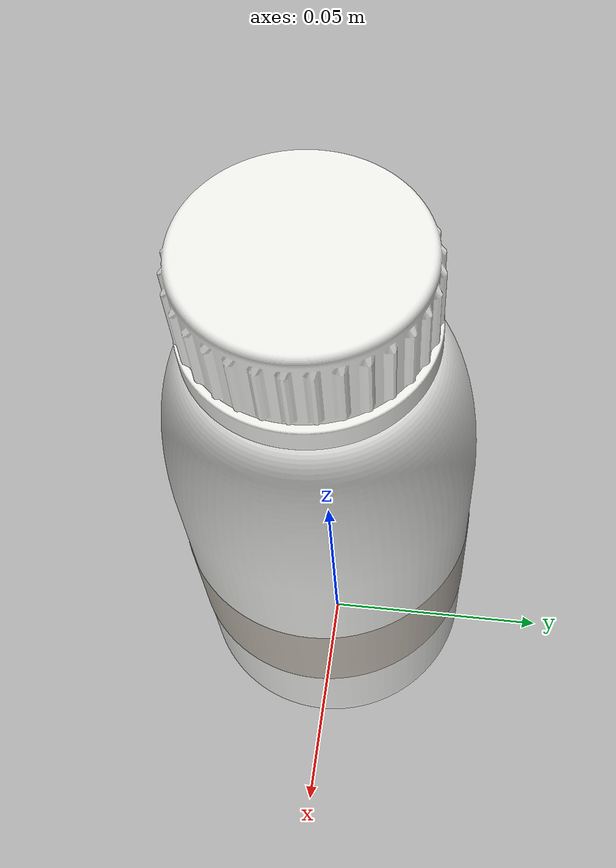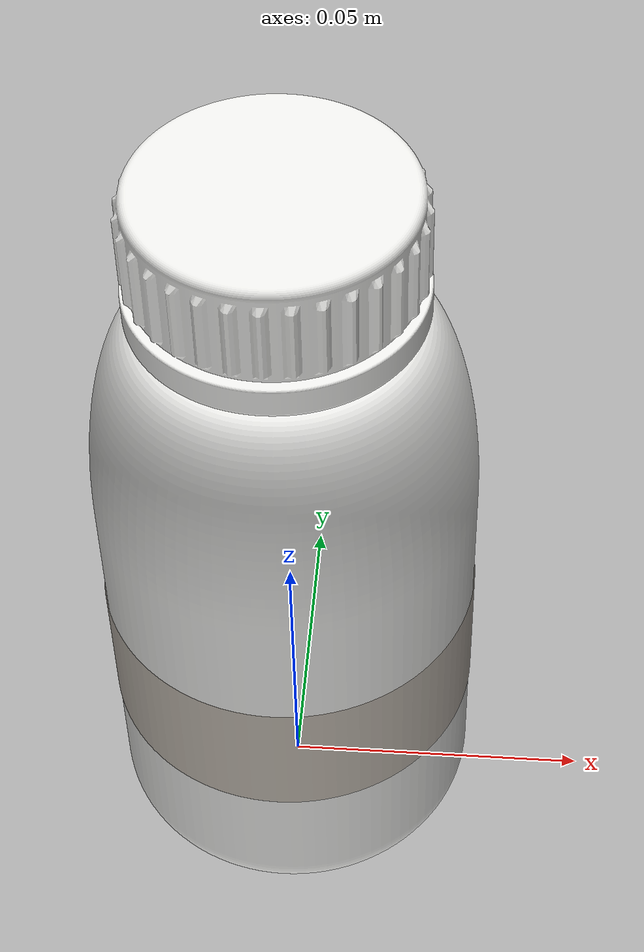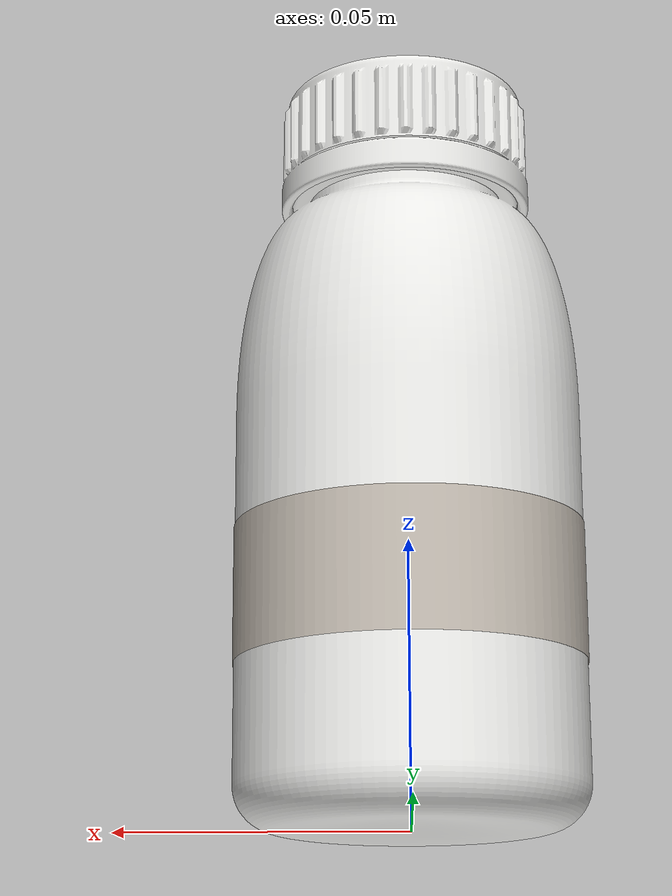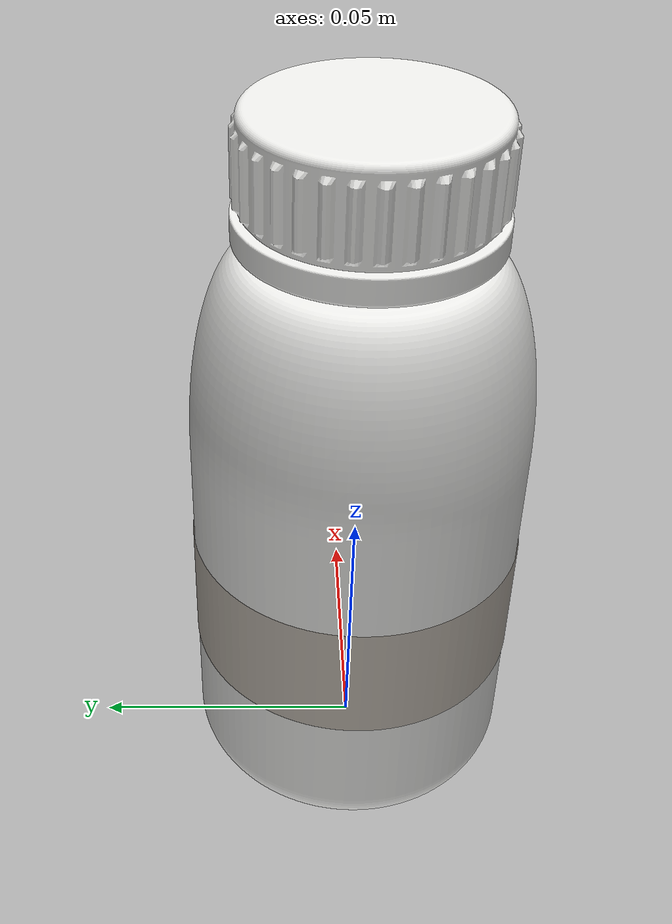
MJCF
<!-- Generated by tools/build_labelled_bottles.py. Phenylacetic acid (powder),
     250 ml, marker 196, barcode 2003873393826.
     Origin bottom-centre, +Z up, the label's front facing -Y. -->
<mujoco model="PWD-0097">
  <asset>
    <mesh name="bottle_250ml_body" file="meshes/bottle_250ml_body.obj" inertia="exact"/>
    <mesh name="bottle_250ml_cap" file="meshes/bottle_250ml_cap.obj" inertia="exact"/>
    <mesh name="bottle_250ml_label" file="meshes/bottle_250ml_label.obj" inertia="shell"/>
    <texture name="label" type="2d" file="textures/PWD-0097.png"/>
    <material name="label" texture="label" specular="0.05" shininess="0.1"/>
  </asset>
  <worldbody>
    <body name="PWD-0097">
      <geom name="body" type="mesh" mesh="bottle_250ml_body" rgba="0.920 0.920 0.910 1.000" density="950"/>
      <geom name="cap" type="mesh" mesh="bottle_250ml_cap" rgba="0.920 0.920 0.910 1.000" density="900"/>
      <geom name="label" type="mesh" mesh="bottle_250ml_label" material="label" contype="0" conaffinity="0" mass="0"/>
    </body>
  </worldbody>
</mujoco>
